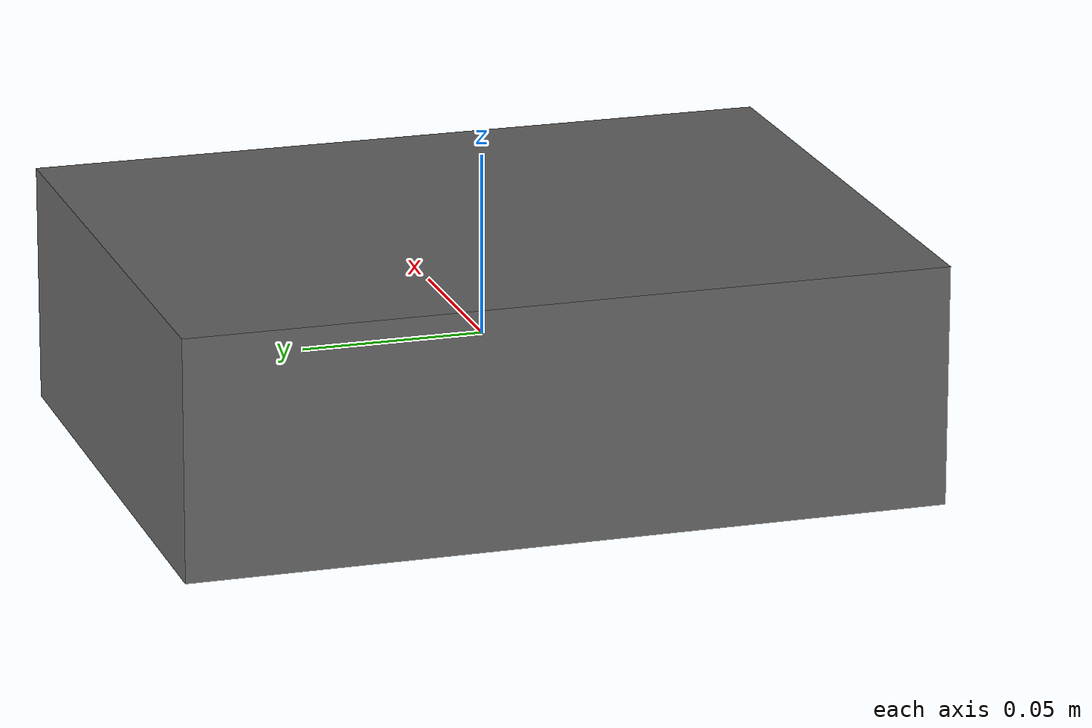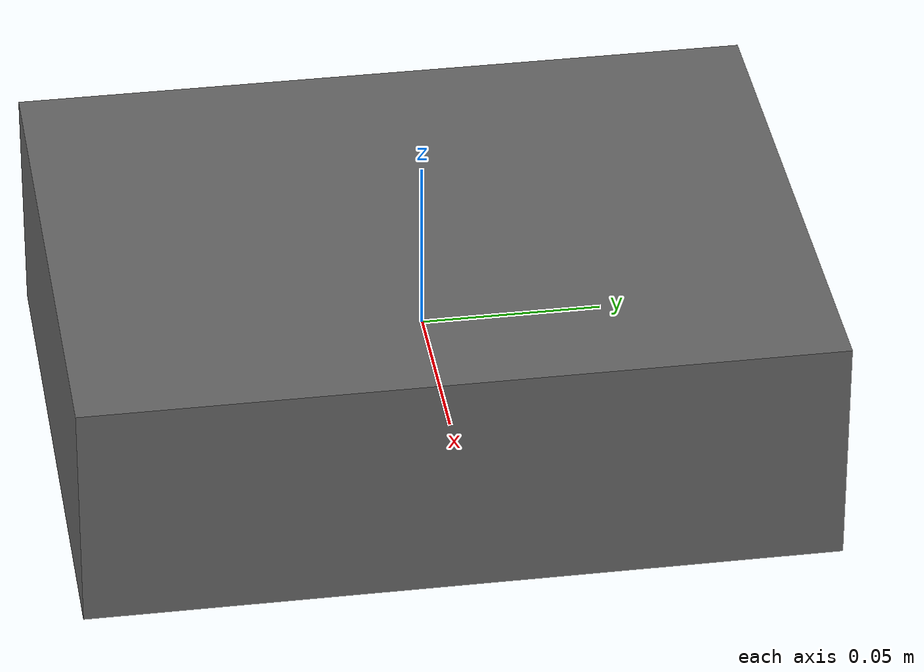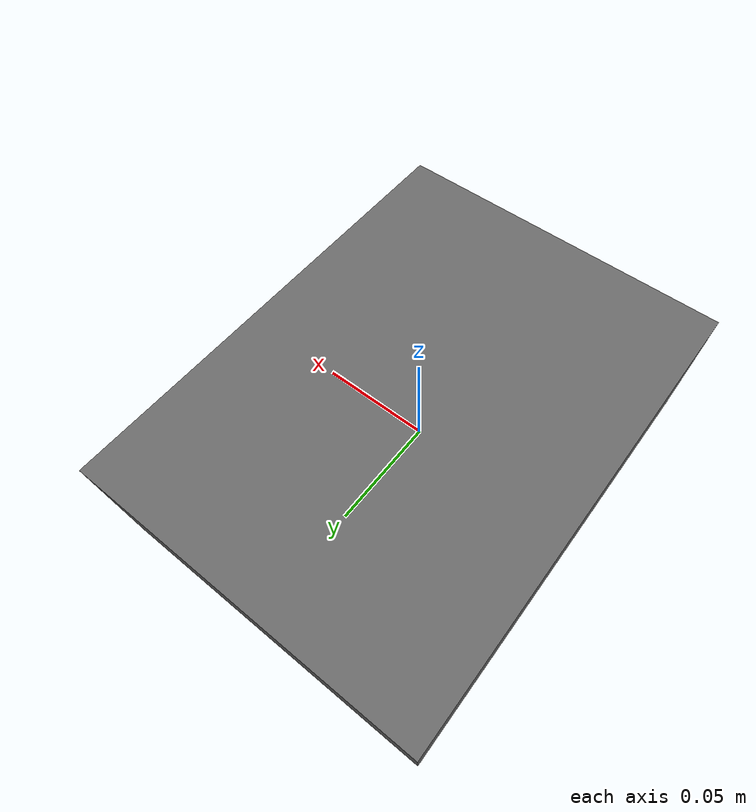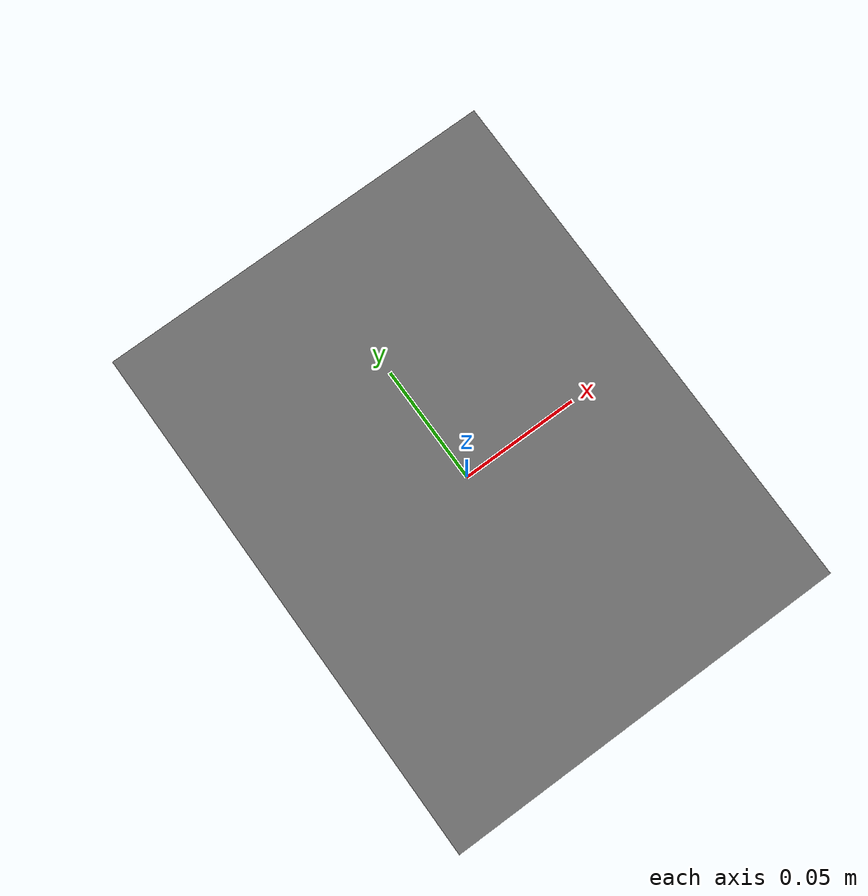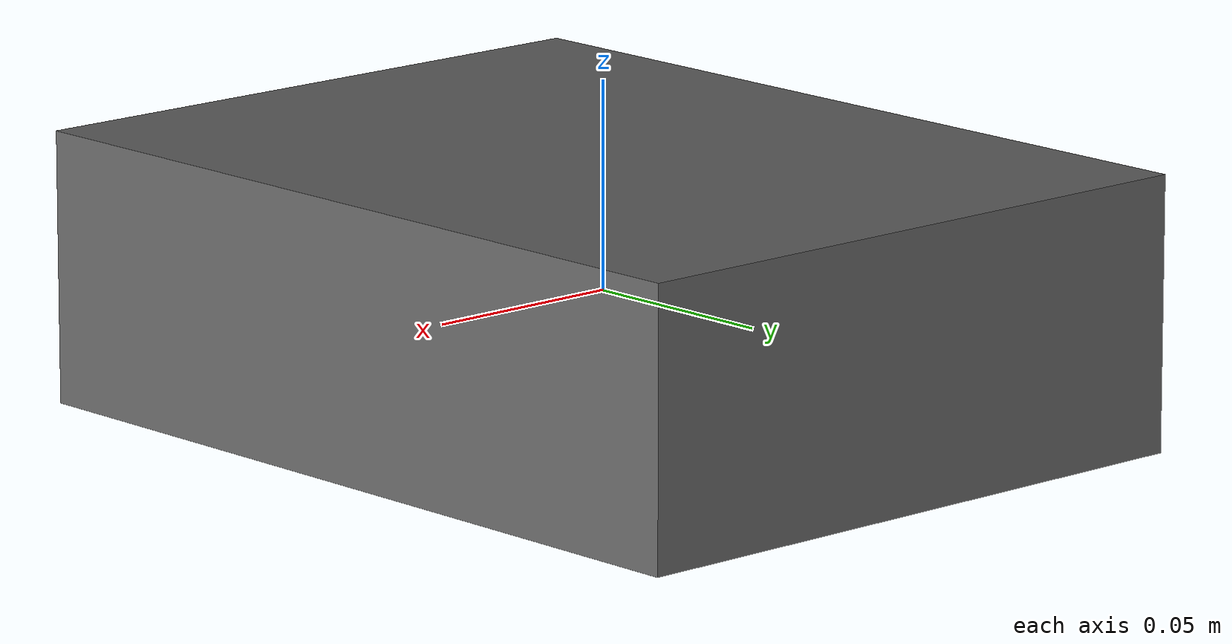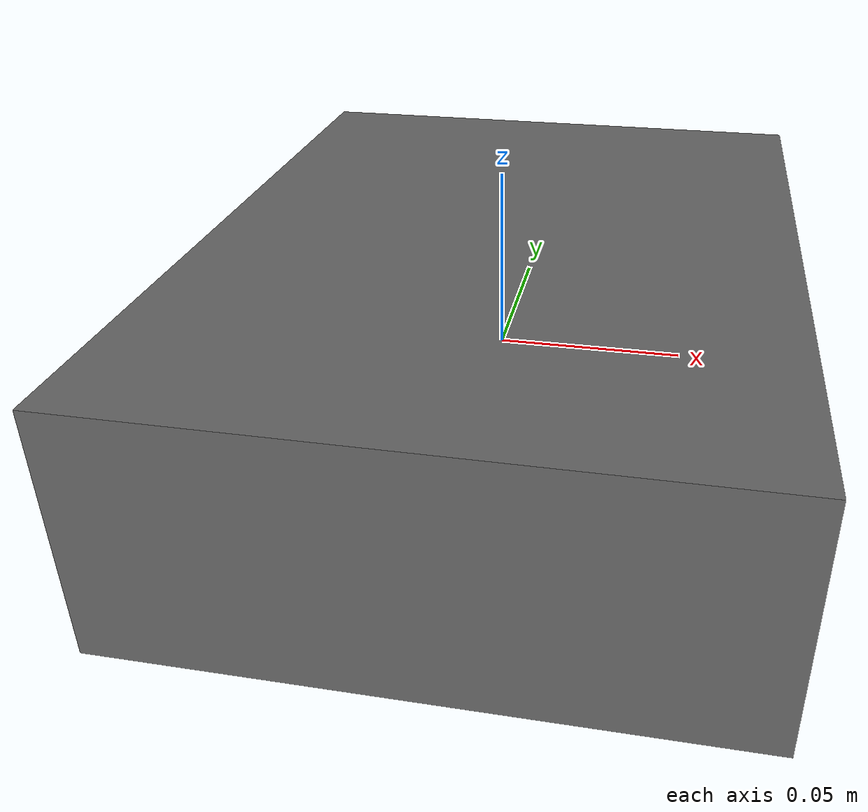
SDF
<?xml version="1.0"?>
<sdf version="1.7">
  <model name="003_cracker_box">
    <link name="base_link_cracker">
      <inertial>
        <mass>0.1</mass>
        <inertia>
          <ixx>0.001736</ixx>
          <ixy>0</ixy>
          <ixz>0</ixz>
          <iyy>0.001098</iyy>
          <iyz>0</iyz>
          <izz>0.002481</izz>
        </inertia>
      </inertial>
      <visual name="base_link_cracker">
        <geometry>
          <box>
            <size>0.158000 0.207400 0.065800</size>
          </box>
        </geometry>
        <material>
          <diffuse>0.4 0.4 0.4 1.0</diffuse>
        </material>
      </visual>
      <collision name="box_collision">
        <geometry>
          <box>
            <size>0.158000 0.207400 0.065800</size>
          </box>
        </geometry>
        <material>
          <diffuse>0 1 0 1.0</diffuse>
        </material>
      </collision>
      <collision name="point_collision1">
        <pose>0.079500 0.104200 0.033400 0 0 0 </pose>
        <geometry>
          <sphere>
            <radius>1e-7</radius>
          </sphere>
        </geometry>
      </collision>
      <collision name="point_collision2">
        <pose>0.079500 -0.104200 0.033400 0 0 0 </pose>
        <geometry>
          <sphere>
            <radius>1e-7</radius>
          </sphere>
        </geometry>
      </collision>
      <collision name="point_collision3">
        <pose>-0.079500 0.104200 0.033400 0 0 0 </pose>
        <geometry>
          <sphere>
            <radius>1e-7</radius>
          </sphere>
        </geometry>
      </collision>
      <collision name="point_collision4">
        <pose>-0.079500 -0.104200 0.033400 0 0 0 </pose>
        <geometry>
          <sphere>
            <radius>1e-7</radius>
          </sphere>
        </geometry>
      </collision>
      <collision name="point_collision5">
        <pose>0.079500 0.104200 -0.033400 0 0 0 </pose>
        <geometry>
          <sphere>
            <radius>1e-7</radius>
          </sphere>
        </geometry>
      </collision>
      <collision name="point_collision6">
        <pose>0.079500 -0.104200 -0.033400 0 0 0 </pose>
        <geometry>
          <sphere>
            <radius>1e-7</radius>
          </sphere>
        </geometry>
      </collision>
      <collision name="point_collision7">
        <pose>-0.079500 0.104200 -0.033400 0 0 0 </pose>
        <geometry>
          <sphere>
            <radius>1e-7</radius>
          </sphere>
        </geometry>
      </collision>
      <collision name="point_collision8">
        <pose>-0.079500 -0.104200 -0.033400 0 0 0 </pose>
        <geometry>
          <sphere>
            <radius>1e-7</radius>
          </sphere>
        </geometry>
      </collision>
    </link>
    <frame link="base_link_cracker" name="point_collision5" xyz="0.079500 0.104200 -0.033400"/>
    <frame link="base_link_cracker" name="point_collision6" xyz="0.079500 -0.104200 -0.033400"/>
    <frame link="base_link_cracker" name="point_collision7" xyz="-0.079500 0.104200 -0.033400"/>
    <frame link="base_link_cracker" name="point_collision8" xyz="-0.079500 -0.104200 -0.033400"/>
    <frame link="base_link_cracker" name="point_collision" xyz="0.079500 0.104200 -0.033400"/>
  </model>
</sdf>
